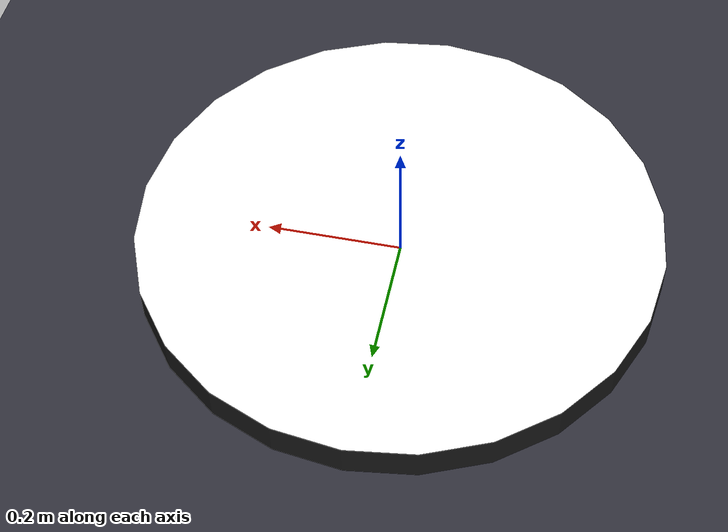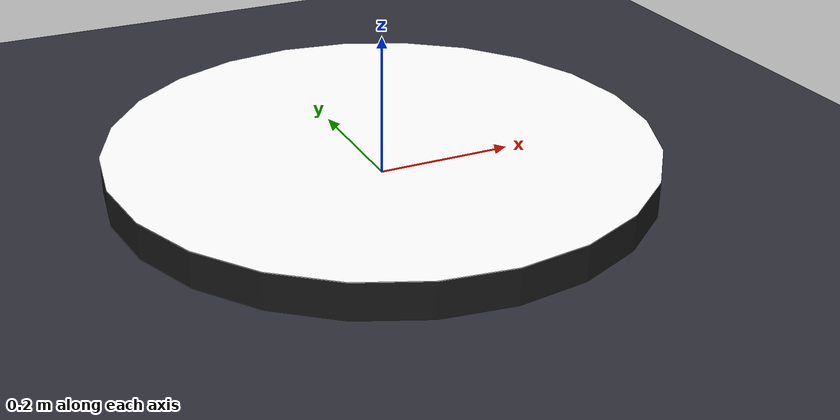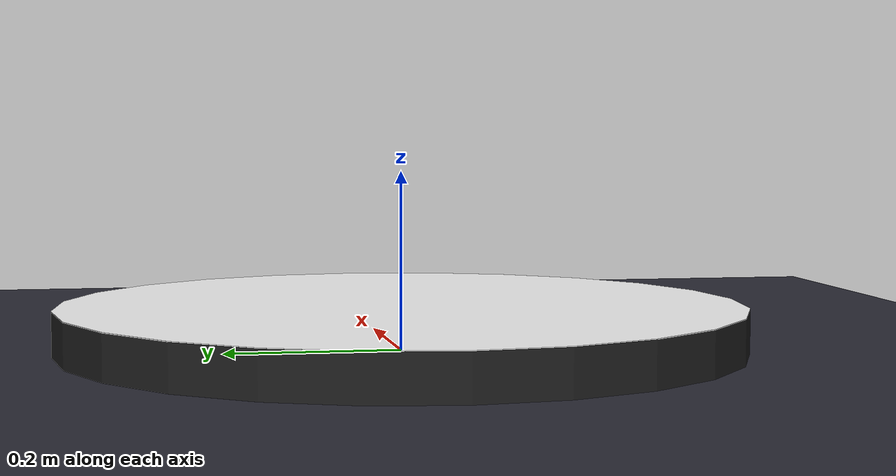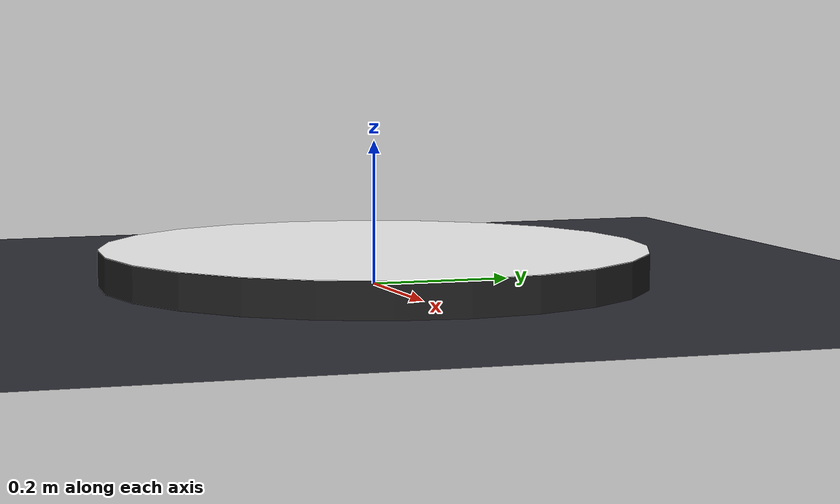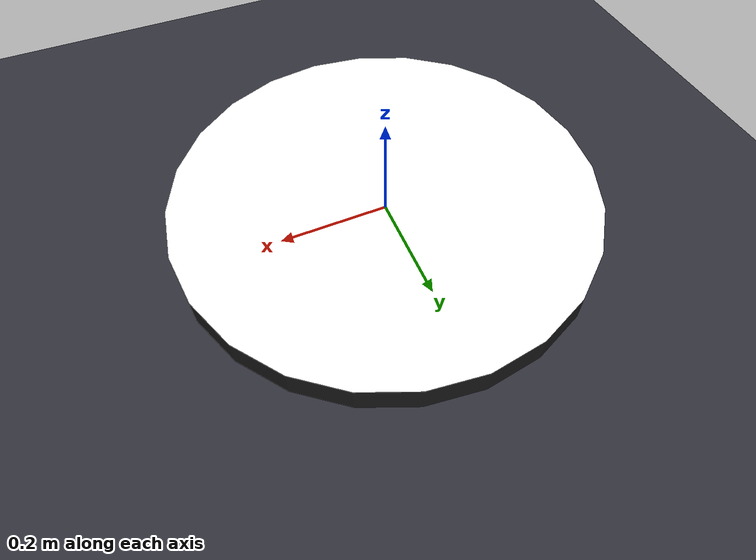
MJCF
<mujoco model="sumo_arena">
  <!-- Dohyo arena: 77cm diameter, raised 5cm, white border 2.2cm -->

  <asset>
    <material name="dohyo_black" rgba="0.12 0.12 0.12 1"/>
    <material name="dohyo_border" rgba="1 1 1 1"/>
    <material name="floor_dark" rgba="0.18 0.18 0.22 1"/>
  </asset>

  <worldbody>
    <!-- Floor below arena (catches fallen robots) -->
    <geom name="floor" type="plane" size="1.5 1.5 0.01"
          material="floor_dark" friction="0.3 0.005 0.001"/>

    <!-- Dohyo platform -->
    <body name="dohyo" pos="0 0 0.025">
      <!-- Main surface -->
      <geom name="dohyo_surface" type="cylinder" size="0.385 0.025"
            material="dohyo_black" friction="0.6 0.005 0.001"
            condim="4" solimp="0.95 0.99 0.001" solref="0.004 1"/>
      <!-- White border ring (visual only, no collision) -->
      <geom name="dohyo_border_ring" type="cylinder" size="0.385 0.0005"
            pos="0 0 0.0255" material="dohyo_border"
            contype="0" conaffinity="0"/>
    </body>
  </worldbody>
</mujoco>
